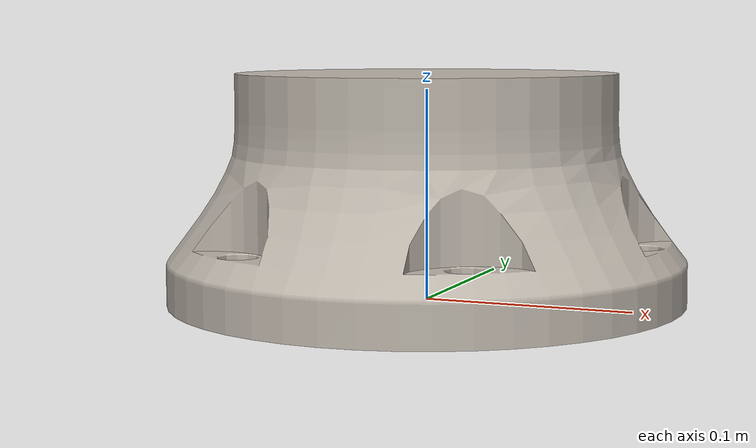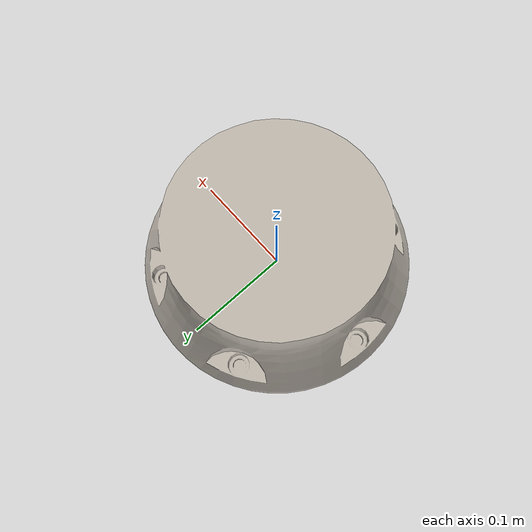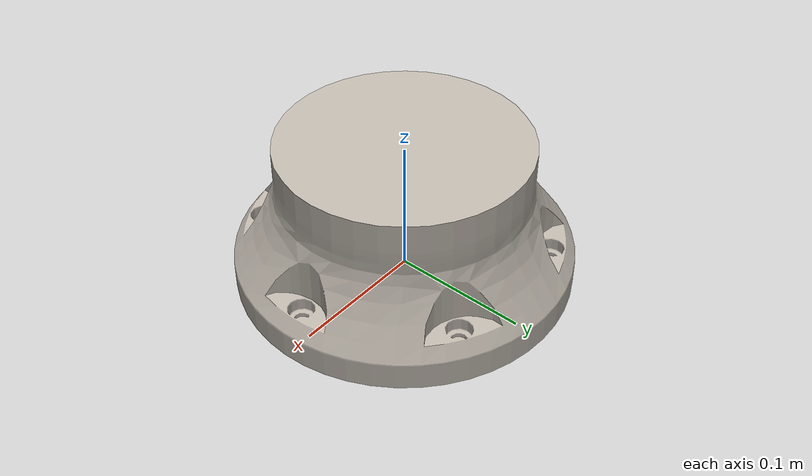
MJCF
<mujoco model="base">
  <default>
    <default class="visual">
      <geom group="2" type="mesh" contype="0" conaffinity="0"/>
    </default>
    <default class="collision">
      <geom group="3" type="mesh"/>
    </default>
  </default>
  <asset>
    <texture type="2d" name="UR20_DIFF_8bit_2K" file="UR20_DIFF_8bit_2K.png"/>
    <material name="UR20_DIFF_8bit_2K_png.001" texture="UR20_DIFF_8bit_2K" specular="0.0" shininess="0.25"/>
    <mesh file="base.obj"/>
  </asset>
  <worldbody>
    <body name="base">
      <geom material="UR20_DIFF_8bit_2K_png.001" mesh="base" class="visual"/>
      <geom mesh="base" class="collision"/>
    </body>
  </worldbody>
</mujoco>
